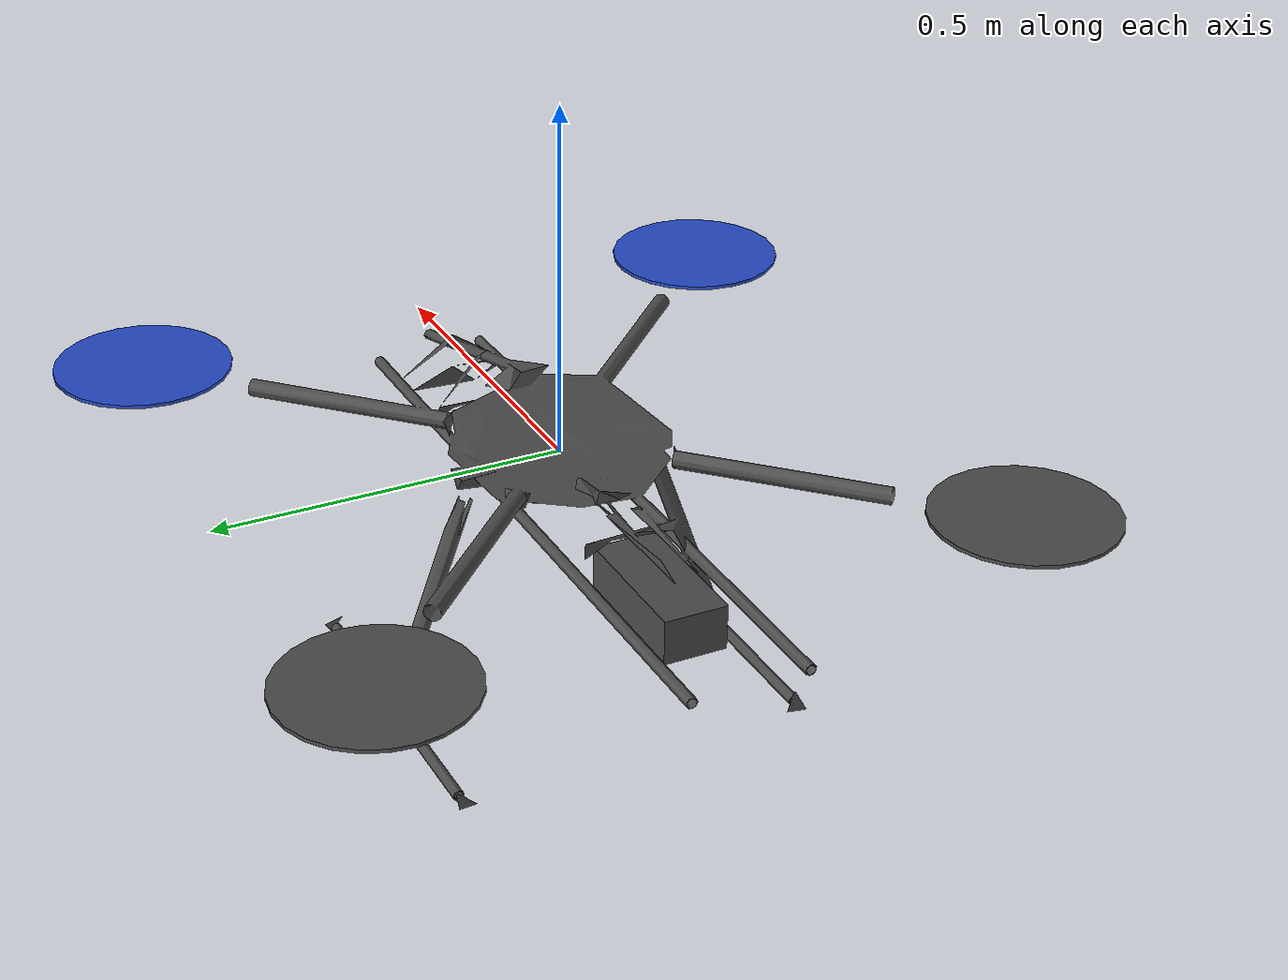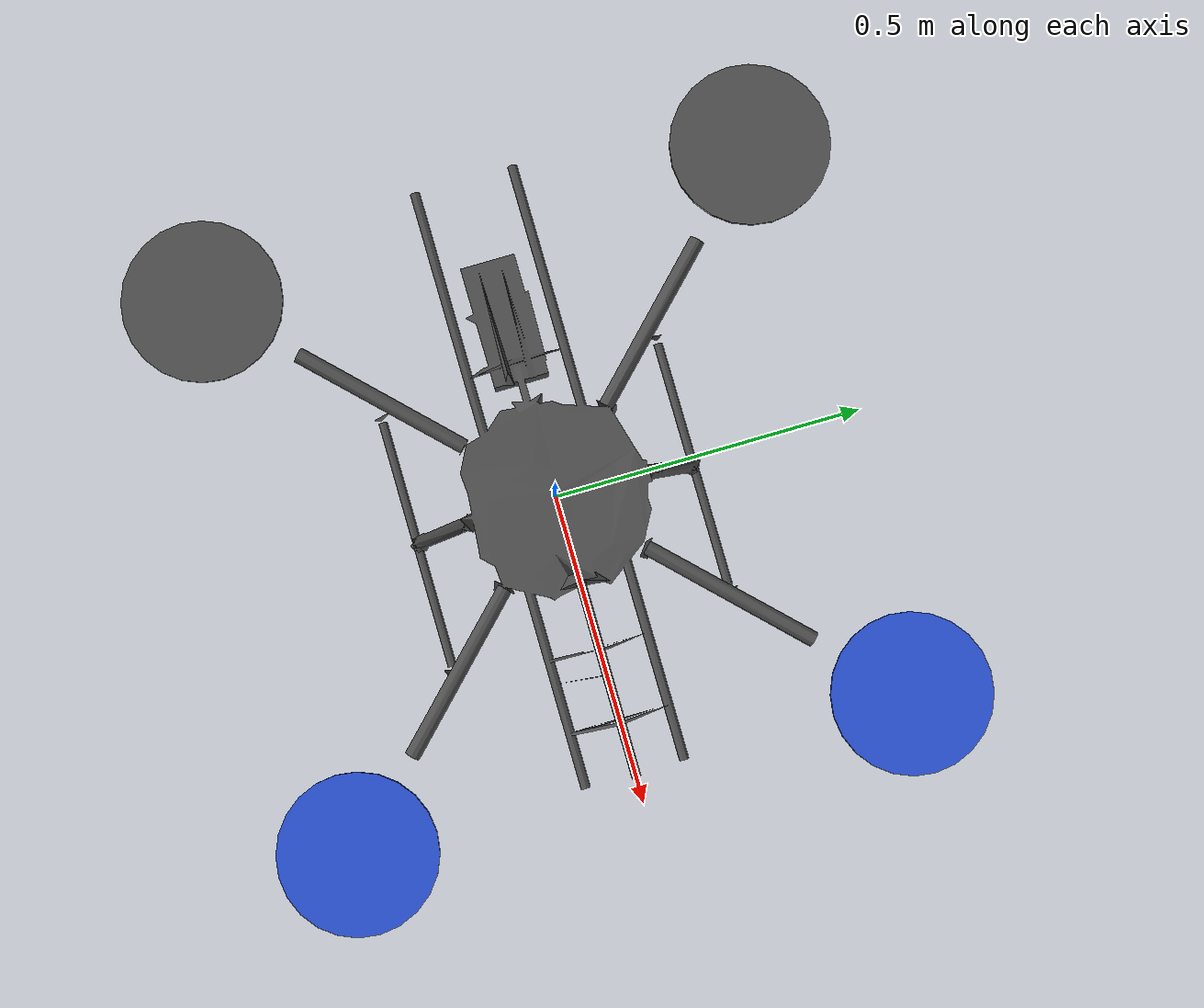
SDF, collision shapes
<sdf version='1.6'>
  <model name='iris'>
    <link name='base_link'>
      <pose frame=''>0 0 0 0 -0 0</pose>
      <inertial>
        <pose frame=''>0 0 0 0 -0 0</pose>
        <mass>0.5</mass>
        <inertia>
          <ixx>0.00970833</ixx>
          <ixy>0</ixy>
          <ixz>0</ixz>
          <iyy>0.00970833</iyy>
          <iyz>0</iyz>
          <izz>0.0184083</izz>
        </inertia>
      </inertial>
      <collision name='base_link_inertia_collision'>
        <pose frame=''>0 0 0 0 -0 0</pose>
        <geometry>
          <mesh>
            <scale>0.001 0.001 0.001</scale>
            <uri>model://rotors_description/meshes/tarot960.stl</uri>
          </mesh>
        </geometry>
        <surface>
          <contact>
            <ode>
              <min_depth>0.001</min_depth>
              <max_vel>0</max_vel>
            </ode>
          </contact>
          <friction>
            <ode/>
          </friction>
        </surface>
      </collision>
      <visual name='base_link_inertia_visual'>
        <pose frame=''>0 0 0 0 -0 0</pose>
        <geometry>
          <mesh>
            <scale>0.001 0.001 0.001</scale>
            <uri>model://rotors_description/meshes/tarot960.stl</uri>
          </mesh>
        </geometry>
        <material>
          <script>
            <name>Gazebo/DarkGrey</name>
            <uri>file://media/materials/scripts/gazebo.material</uri>
          </script>
        </material>
      </visual>
      <gravity>1</gravity>
      <velocity_decay/>
    </link>
    <link name='rotor_0'>
      <pose frame=''>0.45 -0.45 0.023 0 -0 0</pose>
      <inertial>
        <pose frame=''>0 0 0 0 -0 0</pose>
        <mass>0.005</mass>
        <inertia>
          <ixx>9.75e-07</ixx>
          <ixy>0</ixy>
          <ixz>0</ixz>
          <iyy>0.000273104</iyy>
          <iyz>0</iyz>
          <izz>0.000274004</izz>
        </inertia>
      </inertial>
      <collision name='rotor_0_collision'>
        <pose frame=''>0 0 0 0 -0 0</pose>
        <geometry>
          <cylinder>
            <length>0.005</length>
            <radius>0.128</radius>
          </cylinder>
        </geometry>
        <surface>
          <contact>
            <ode/>
          </contact>
          <friction>
            <ode/>
          </friction>
        </surface>
      </collision>
      <visual name='rotor_0_visual'>
        <pose frame=''>0 0 0 0 -0 0</pose>
        <geometry>
          <mesh>
            <scale>1 1 1</scale>
            <uri>model://rotors_description/meshes/iris_prop_ccw.dae</uri>
          </mesh>
        </geometry>
        <material>
          <script>
            <name>Gazebo/Blue</name>
            <uri>file://media/materials/scripts/gazebo.material</uri>
          </script>
        </material>
      </visual>
      <gravity>1</gravity>
      <velocity_decay/>
    </link>
    <joint name='rotor_0_joint' type='revolute'>
      <child>rotor_0</child>
      <parent>base_link</parent>
      <axis>
        <xyz>0 0 1</xyz>
        <limit>
          <lower>-1e+16</lower>
          <upper>1e+16</upper>
        </limit>
        <dynamics>
          <spring_reference>0</spring_reference>
          <spring_stiffness>0</spring_stiffness>
        </dynamics>
        <use_parent_model_frame>1</use_parent_model_frame>
      </axis>
    </joint>
    <link name='rotor_1'>
      <pose frame=''>-0.45 0.45 0.023 0 -0 0</pose>
      <inertial>
        <pose frame=''>0 0 0 0 -0 0</pose>
        <mass>0.005</mass>
        <inertia>
          <ixx>9.75e-07</ixx>
          <ixy>0</ixy>
          <ixz>0</ixz>
          <iyy>0.000273104</iyy>
          <iyz>0</iyz>
          <izz>0.000274004</izz>
        </inertia>
      </inertial>
      <collision name='rotor_1_collision'>
        <pose frame=''>0 0 0 0 -0 0</pose>
        <geometry>
          <cylinder>
            <length>0.005</length>
            <radius>0.128</radius>
          </cylinder>
        </geometry>
        <surface>
          <contact>
            <ode/>
          </contact>
          <friction>
            <ode/>
          </friction>
        </surface>
      </collision>
      <visual name='rotor_1_visual'>
        <pose frame=''>0 0 0 0 -0 0</pose>
        <geometry>
          <mesh>
            <scale>1 1 1</scale>
            <uri>model://rotors_description/meshes/iris_prop_ccw.dae</uri>
          </mesh>
        </geometry>
        <material>
          <script>
            <name>Gazebo/DarkGrey</name>
            <uri>file://media/materials/scripts/gazebo.material</uri>
          </script>
        </material>
      </visual>
      <gravity>1</gravity>
      <velocity_decay/>
    </link>
    <joint name='rotor_1_joint' type='revolute'>
      <child>rotor_1</child>
      <parent>base_link</parent>
      <axis>
        <xyz>0 0 1</xyz>
        <limit>
          <lower>-1e+16</lower>
          <upper>1e+16</upper>
        </limit>
        <dynamics>
          <spring_reference>0</spring_reference>
          <spring_stiffness>0</spring_stiffness>
        </dynamics>
        <use_parent_model_frame>1</use_parent_model_frame>
      </axis>
    </joint>
    <link name='rotor_2'>
      <pose frame=''>0.45 0.45 0.023 0 -0 0</pose>
      <inertial>
        <pose frame=''>0 0 0 0 -0 0</pose>
        <mass>0.005</mass>
        <inertia>
          <ixx>9.75e-07</ixx>
          <ixy>0</ixy>
          <ixz>0</ixz>
          <iyy>0.000273104</iyy>
          <iyz>0</iyz>
          <izz>0.000274004</izz>
        </inertia>
      </inertial>
      <collision name='rotor_2_collision'>
        <pose frame=''>0 0 0 0 -0 0</pose>
        <geometry>
          <cylinder>
            <length>0.005</length>
            <radius>0.128</radius>
          </cylinder>
        </geometry>
        <surface>
          <contact>
            <ode/>
          </contact>
          <friction>
            <ode/>
          </friction>
        </surface>
      </collision>
      <visual name='rotor_2_visual'>
        <pose frame=''>0 0 0 0 -0 0</pose>
        <geometry>
          <mesh>
            <scale>1 1 1</scale>
            <uri>model://rotors_description/meshes/iris_prop_cw.dae</uri>
          </mesh>
        </geometry>
        <material>
          <script>
            <name>Gazebo/Blue</name>
            <uri>file://media/materials/scripts/gazebo.material</uri>
          </script>
        </material>
      </visual>
      <gravity>1</gravity>
      <velocity_decay/>
    </link>
    <joint name='rotor_2_joint' type='revolute'>
      <child>rotor_2</child>
      <parent>base_link</parent>
      <axis>
        <xyz>0 0 1</xyz>
        <limit>
          <lower>-1e+16</lower>
          <upper>1e+16</upper>
        </limit>
        <dynamics>
          <spring_reference>0</spring_reference>
          <spring_stiffness>0</spring_stiffness>
        </dynamics>
        <use_parent_model_frame>1</use_parent_model_frame>
      </axis>
    </joint>
    <link name='rotor_3'>
      <pose frame=''>-0.45 -0.45 0.023 0 -0 0</pose>
      <inertial>
        <pose frame=''>0 0 0 0 -0 0</pose>
        <mass>0.005</mass>
        <inertia>
          <ixx>9.75e-07</ixx>
          <ixy>0</ixy>
          <ixz>0</ixz>
          <iyy>0.000273104</iyy>
          <iyz>0</iyz>
          <izz>0.000274004</izz>
        </inertia>
      </inertial>
      <collision name='rotor_3_collision'>
        <pose frame=''>0 0 0 0 -0 0</pose>
        <geometry>
          <cylinder>
            <length>0.005</length>
            <radius>0.128</radius>
          </cylinder>
        </geometry>
        <surface>
          <contact>
            <ode/>
          </contact>
          <friction>
            <ode/>
          </friction>
        </surface>
      </collision>
      <visual name='rotor_3_visual'>
        <pose frame=''>0 0 0 0 -0 0</pose>
        <geometry>
          <mesh>
            <scale>1 1 1</scale>
            <uri>model://rotors_description/meshes/iris_prop_cw.dae</uri>
          </mesh>
        </geometry>
        <material>
          <script>
            <name>Gazebo/DarkGrey</name>
            <uri>file://media/materials/scripts/gazebo.material</uri>
          </script>
        </material>
      </visual>
      <gravity>1</gravity>
      <velocity_decay/>
    </link>
    <joint name='rotor_3_joint' type='revolute'>
      <child>rotor_3</child>
      <parent>base_link</parent>
      <axis>
        <xyz>0 0 1</xyz>
        <limit>
          <lower>-1e+16</lower>
          <upper>1e+16</upper>
        </limit>
        <dynamics>
          <spring_reference>0</spring_reference>
          <spring_stiffness>0</spring_stiffness>
        </dynamics>
        <use_parent_model_frame>1</use_parent_model_frame>
      </axis>
    </joint>
    <link name='tarot960/imu_link'>
      <pose frame=''>0 0 0 0 -0 0</pose>
      <inertial>
        <pose frame=''>0 0 0 0 -0 0</pose>
        <mass>0.015</mass>
        <inertia>
          <ixx>1e-05</ixx>
          <ixy>0</ixy>
          <ixz>0</ixz>
          <iyy>1e-05</iyy>
          <iyz>0</iyz>
          <izz>1e-05</izz>
        </inertia>
      </inertial>
    </link>
    <joint name='tarot960/imu_joint' type='revolute'>
      <child>tarot960/imu_link</child>
      <parent>base_link</parent>
      <axis>
        <xyz>1 0 0</xyz>
        <limit>
          <lower>0</lower>
          <upper>0</upper>
          <effort>0</effort>
          <velocity>0</velocity>
        </limit>
        <dynamics>
          <spring_reference>0</spring_reference>
          <spring_stiffness>0</spring_stiffness>
        </dynamics>
        <use_parent_model_frame>1</use_parent_model_frame>
      </axis>
    </joint>
    <plugin name='rosbag' filename='libgazebo_multirotor_base_plugin.so'>
      <robotNamespace>tarot960</robotNamespace>
      <linkName>base_link</linkName>
      <rotorVelocitySlowdownSim>10</rotorVelocitySlowdownSim>
    </plugin>
    <plugin name='front_right_motor_model' filename='libgazebo_motor_model.so'>
      <robotNamespace>tarot960</robotNamespace>
      <jointName>rotor_0_joint</jointName>
      <linkName>rotor_0</linkName>
      <turningDirection>ccw</turningDirection>
      <timeConstantUp>0.0125</timeConstantUp>
      <timeConstantDown>0.025</timeConstantDown>
      <maxRotVelocity>2100</maxRotVelocity>
      <motorConstant>8.54858e-06</motorConstant>
      <momentConstant>0.06</momentConstant>
      <commandSubTopic>/gazebo/command/motor_speed</commandSubTopic>
      <motorNumber>0</motorNumber>
      <rotorDragCoefficient>0.000175</rotorDragCoefficient>
      <rollingMomentCoefficient>1e-06</rollingMomentCoefficient>
      <motorSpeedPubTopic>/motor_speed/0</motorSpeedPubTopic>
      <rotorVelocitySlowdownSim>10</rotorVelocitySlowdownSim>
    </plugin>
    <plugin name='back_left_motor_model' filename='libgazebo_motor_model.so'>
      <robotNamespace>tarot960</robotNamespace>
      <jointName>rotor_1_joint</jointName>
      <linkName>rotor_1</linkName>
      <turningDirection>ccw</turningDirection>
      <timeConstantUp>0.0125</timeConstantUp>
      <timeConstantDown>0.025</timeConstantDown>
      <maxRotVelocity>2100</maxRotVelocity>
      <motorConstant>8.54858e-06</motorConstant>
      <momentConstant>0.06</momentConstant>
      <commandSubTopic>/gazebo/command/motor_speed</commandSubTopic>
      <motorNumber>1</motorNumber>
      <rotorDragCoefficient>0.000175</rotorDragCoefficient>
      <rollingMomentCoefficient>1e-06</rollingMomentCoefficient>
      <motorSpeedPubTopic>/motor_speed/1</motorSpeedPubTopic>
      <rotorVelocitySlowdownSim>10</rotorVelocitySlowdownSim>
    </plugin>
    <plugin name='front_left_motor_model' filename='libgazebo_motor_model.so'>
      <robotNamespace>tarot960</robotNamespace>
      <jointName>rotor_2_joint</jointName>
      <linkName>rotor_2</linkName>
      <turningDirection>cw</turningDirection>
      <timeConstantUp>0.0125</timeConstantUp>
      <timeConstantDown>0.025</timeConstantDown>
      <maxRotVelocity>2100</maxRotVelocity>
      <motorConstant>8.54858e-06</motorConstant>
      <momentConstant>0.06</momentConstant>
      <commandSubTopic>/gazebo/command/motor_speed</commandSubTopic>
      <motorNumber>2</motorNumber>
      <rotorDragCoefficient>0.000175</rotorDragCoefficient>
      <rollingMomentCoefficient>1e-06</rollingMomentCoefficient>
      <motorSpeedPubTopic>/motor_speed/2</motorSpeedPubTopic>
      <rotorVelocitySlowdownSim>10</rotorVelocitySlowdownSim>
    </plugin>
    <plugin name='back_right_motor_model' filename='libgazebo_motor_model.so'>
      <robotNamespace>tarot960</robotNamespace>
      <jointName>rotor_3_joint</jointName>
      <linkName>rotor_3</linkName>
      <turningDirection>cw</turningDirection>
      <timeConstantUp>0.0125</timeConstantUp>
      <timeConstantDown>0.025</timeConstantDown>
      <maxRotVelocity>2100</maxRotVelocity>
      <motorConstant>8.54858e-06</motorConstant>
      <momentConstant>0.06</momentConstant>
      <commandSubTopic>/gazebo/command/motor_speed</commandSubTopic>
      <motorNumber>3</motorNumber>
      <rotorDragCoefficient>0.000175</rotorDragCoefficient>
      <rollingMomentCoefficient>1e-06</rollingMomentCoefficient>
      <motorSpeedPubTopic>/motor_speed/3</motorSpeedPubTopic>
      <rotorVelocitySlowdownSim>10</rotorVelocitySlowdownSim>
    </plugin>
    <plugin name='gps_plugin' filename='libgazebo_gps_plugin.so'>
      <robotNamespace>tarot960</robotNamespace>
      <gpsNoise>1</gpsNoise>
    </plugin>
    <plugin name='magnetometer_plugin' filename='libgazebo_magnetometer_plugin.so'>
      <robotNamespace>tarot960</robotNamespace>
      <pubRate>100</pubRate>
      <noiseDensity>0.0004</noiseDensity>
      <randomWalk>6.4e-06</randomWalk>
      <biasCorrelationTime>600</biasCorrelationTime>
      <magTopic>/mag</magTopic>
    </plugin>
    <plugin name='barometer_plugin' filename='libgazebo_barometer_plugin.so'>
      <robotNamespace>tarot960</robotNamespace>
      <pubRate>50</pubRate>
      <baroTopic>/baro</baroTopic>
    </plugin>
    <plugin name='ros_interface' filename='libgazebo_ros_interface.so'>
      <robotNamespace>tarot960</robotNamespace>
      <imuSubTopic>/imu</imuSubTopic>
      <gpsSubTopic>/gps</gpsSubTopic>
      <odomFrame>NED</odomFrame>
      <motorSize>4</motorSize>
      <motorSpeedCommandPubTopic>/gazebo/command/motor_speed</motorSpeedCommandPubTopic>
      <control_channels>
        <channel name='rotor1'>
          <input_index>0</input_index>
          <input_offset>0</input_offset>
          <input_scaling>1000</input_scaling>
          <zero_position_disarmed>0</zero_position_disarmed>
          <zero_position_armed>100</zero_position_armed>
          <joint_control_type>velocity</joint_control_type>
        </channel>
        <channel name='rotor2'>
          <input_index>1</input_index>
          <input_offset>0</input_offset>
          <input_scaling>1000</input_scaling>
          <zero_position_disarmed>0</zero_position_disarmed>
          <zero_position_armed>100</zero_position_armed>
          <joint_control_type>velocity</joint_control_type>
        </channel>
        <channel name='rotor3'>
          <input_index>2</input_index>
          <input_offset>0</input_offset>
          <input_scaling>1000</input_scaling>
          <zero_position_disarmed>0</zero_position_disarmed>
          <zero_position_armed>100</zero_position_armed>
          <joint_control_type>velocity</joint_control_type>
        </channel>
        <channel name='rotor4'>
          <input_index>3</input_index>
          <input_offset>0</input_offset>
          <input_scaling>1000</input_scaling>
          <zero_position_disarmed>0</zero_position_disarmed>
          <zero_position_armed>100</zero_position_armed>
          <joint_control_type>velocity</joint_control_type>
        </channel>
        <channel name='rotor5'>
          <input_index>4</input_index>
          <input_offset>1</input_offset>
          <input_scaling>324.6</input_scaling>
          <zero_position_disarmed>0</zero_position_disarmed>
          <zero_position_armed>0</zero_position_armed>
          <joint_control_type>velocity</joint_control_type>
          <joint_control_pid>
            <p>0.1</p>
            <i>0</i>
            <d>0</d>
            <iMax>0.0</iMax>
            <iMin>0.0</iMin>
            <cmdMax>2</cmdMax>
            <cmdMin>-2</cmdMin>
          </joint_control_pid>
          <joint_name>zephyr_delta_wing::propeller_joint</joint_name>
        </channel>
        <channel name='rotor6'>
          <input_index>5</input_index>
          <input_offset>0</input_offset>
          <input_scaling>0.524</input_scaling>
          <zero_position_disarmed>0</zero_position_disarmed>
          <zero_position_armed>0</zero_position_armed>
          <joint_control_type>position</joint_control_type>
          <joint_name>zephyr_delta_wing::flap_left_joint</joint_name>
          <joint_control_pid>
            <p>10.0</p>
            <i>0</i>
            <d>0</d>
            <iMax>0</iMax>
            <iMin>0</iMin>
            <cmdMax>20</cmdMax>
            <cmdMin>-20</cmdMin>
          </joint_control_pid>
        </channel>
        <channel name='rotor7'>
          <input_index>6</input_index>
          <input_offset>0</input_offset>
          <input_scaling>0.524</input_scaling>
          <zero_position_disarmed>0</zero_position_disarmed>
          <zero_position_armed>0</zero_position_armed>
          <joint_control_type>position</joint_control_type>
          <joint_name>zephyr_delta_wing::flap_right_joint</joint_name>
          <joint_control_pid>
            <p>10.0</p>
            <i>0</i>
            <d>0</d>
            <iMax>0</iMax>
            <iMin>0</iMin>
            <cmdMax>20</cmdMax>
            <cmdMin>-20</cmdMin>
          </joint_control_pid>
        </channel>
        <channel name='rotor8'>
          <input_index>7</input_index>
          <input_offset>0</input_offset>
          <input_scaling>0.524</input_scaling>
          <zero_position_disarmed>0</zero_position_disarmed>
          <zero_position_armed>0</zero_position_armed>
          <joint_control_type>position</joint_control_type>
        </channel>
      </control_channels>
    </plugin>
    <static>0</static>
    <plugin name='rotors_gazebo_imu_plugin' filename='libgazebo_imu_plugin.so'>
      <robotNamespace>tarot960</robotNamespace>
      <linkName>tarot960/imu_link</linkName>
      <imuTopic>/imu</imuTopic>
      <gyroscopeNoiseDensity>0.00018665</gyroscopeNoiseDensity>
      <gyroscopeRandomWalk>3.8785e-05</gyroscopeRandomWalk>
      <gyroscopeBiasCorrelationTime>1000.0</gyroscopeBiasCorrelationTime>
      <gyroscopeTurnOnBiasSigma>0.0087</gyroscopeTurnOnBiasSigma>
      <accelerometerNoiseDensity>0.00186</accelerometerNoiseDensity>
      <accelerometerRandomWalk>0.006</accelerometerRandomWalk>
      <accelerometerBiasCorrelationTime>300.0</accelerometerBiasCorrelationTime>
      <accelerometerTurnOnBiasSigma>0.196</accelerometerTurnOnBiasSigma>
    </plugin>
  </model>
</sdf>
